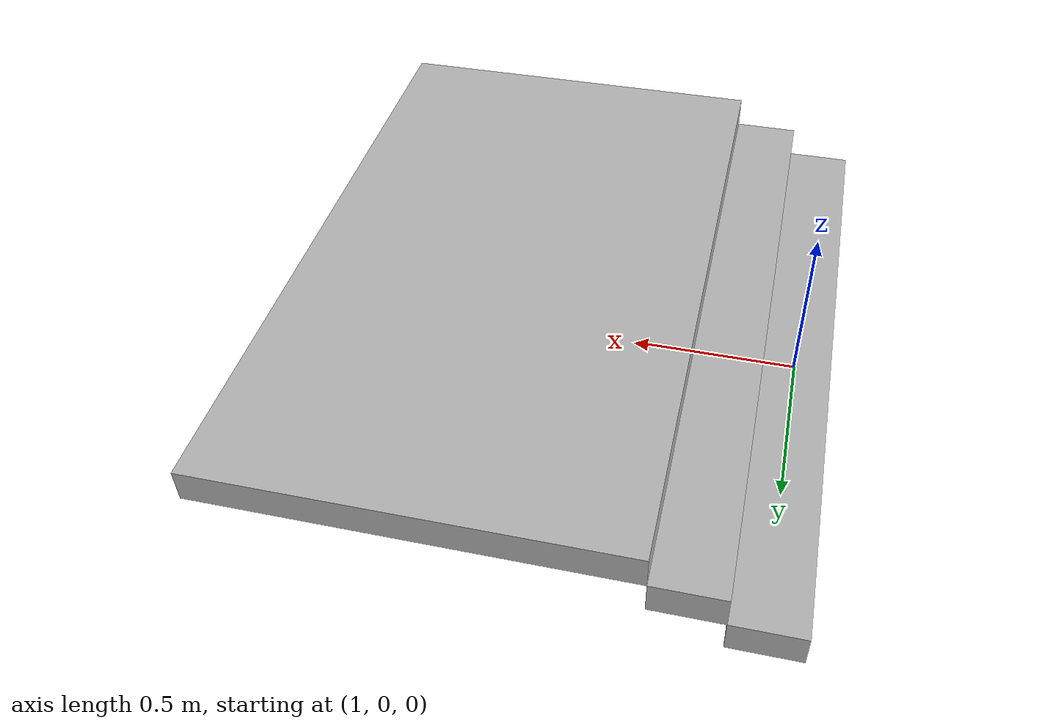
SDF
<sdf version='1.7'>
  <model name='stairs'>
    <link name='step_1'>
      <inertial>
        <pose>0 0 0 0 -0 0</pose>
        <mass>3</mass>
        <inertia>
          <ixx>0</ixx>
          <ixy>0</ixy>
          <ixz>0</ixz>
          <iyy>0</iyy>
          <iyz>0</iyz>
          <izz>0</izz>
        </inertia>
      </inertial>
      <collision name='step_1_collision'>
        <pose>1 0 0.05 0 -0 0</pose>
        <geometry>
          <box>
            <size>0.2 2 0.1</size>
          </box>
        </geometry>
        <surface>
          <contact>
            <ode/>
          </contact>
          <friction>
            <ode>
              <mu>1</mu>
              <mu2>1</mu2>
            </ode>
          </friction>
        </surface>
      </collision>
      <collision name='step_1_fixed_joint_lump__step_2_collision_1'>
        <pose>1.2 0 0.15 0 -0 0</pose>
        <geometry>
          <box>
            <size>0.2 2 0.1</size>
          </box>
        </geometry>
        <surface>
          <contact>
            <ode/>
          </contact>
          <friction>
            <ode>
              <mu>1</mu>
              <mu2>1</mu2>
            </ode>
          </friction>
        </surface>
      </collision>
      <collision name='step_1_fixed_joint_lump__step_3_collision_2'>
        <pose>1.9 0 0.25 0 -0 0</pose>
        <geometry>
          <box>
            <size>1.2 2 0.1</size>
          </box>
        </geometry>
        <surface>
          <contact>
            <ode/>
          </contact>
          <friction>
            <ode>
              <mu>1</mu>
              <mu2>1</mu2>
            </ode>
          </friction>
        </surface>
      </collision>
      <visual name='step_1_visual'>
        <pose>1 0 0.05 0 -0 0</pose>
        <geometry>
          <box>
            <size>0.2 2 0.1</size>
          </box>
        </geometry>
      </visual>
      <visual name='step_1_fixed_joint_lump__step_2_visual_1'>
        <pose>1.2 0 0.15 0 -0 0</pose>
        <geometry>
          <box>
            <size>0.2 2 0.1</size>
          </box>
        </geometry>
      </visual>
      <visual name='step_1_fixed_joint_lump__step_3_visual_2'>
        <pose>1.9 0 0.25 0 -0 0</pose>
        <geometry>
          <box>
            <size>1.2 2 0.1</size>
          </box>
        </geometry>
      </visual>
    </link>
    <static>1</static>
  </model>
</sdf>
